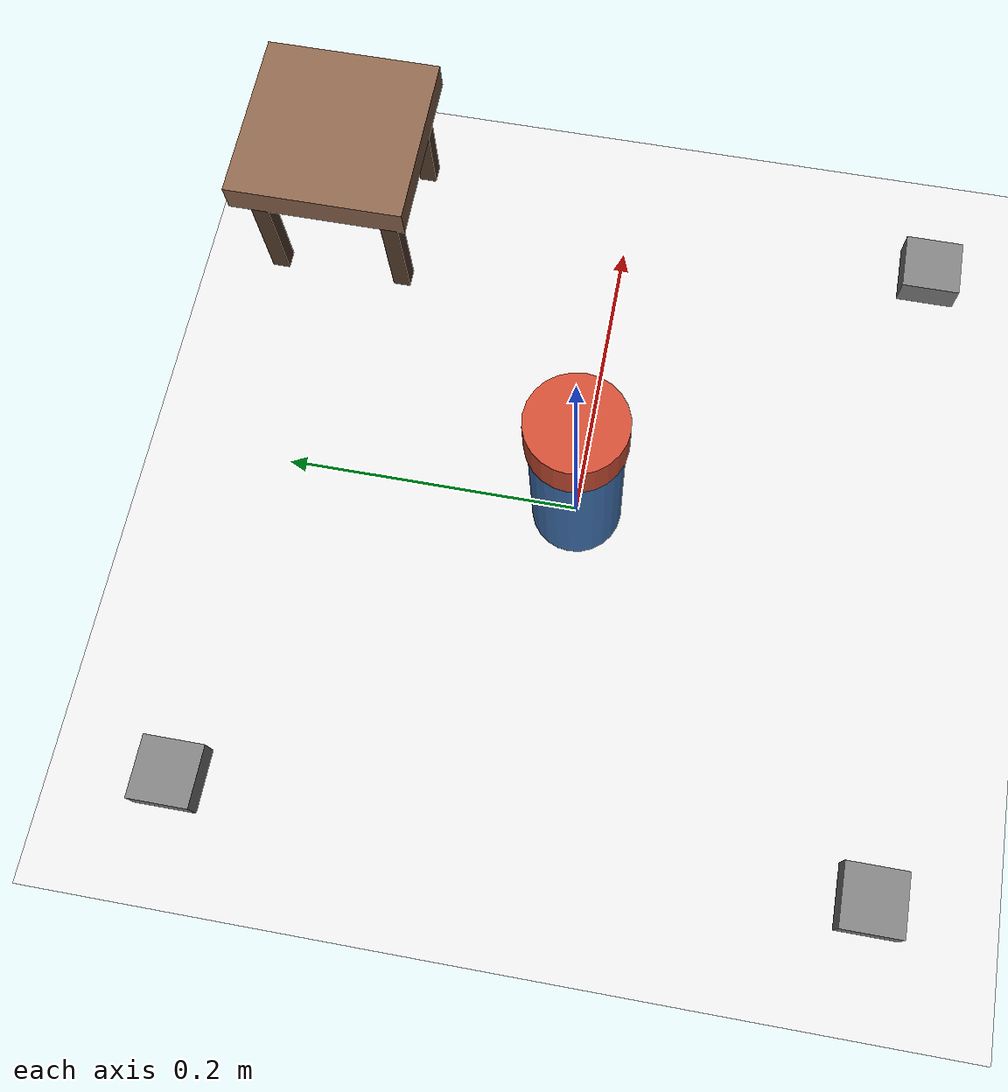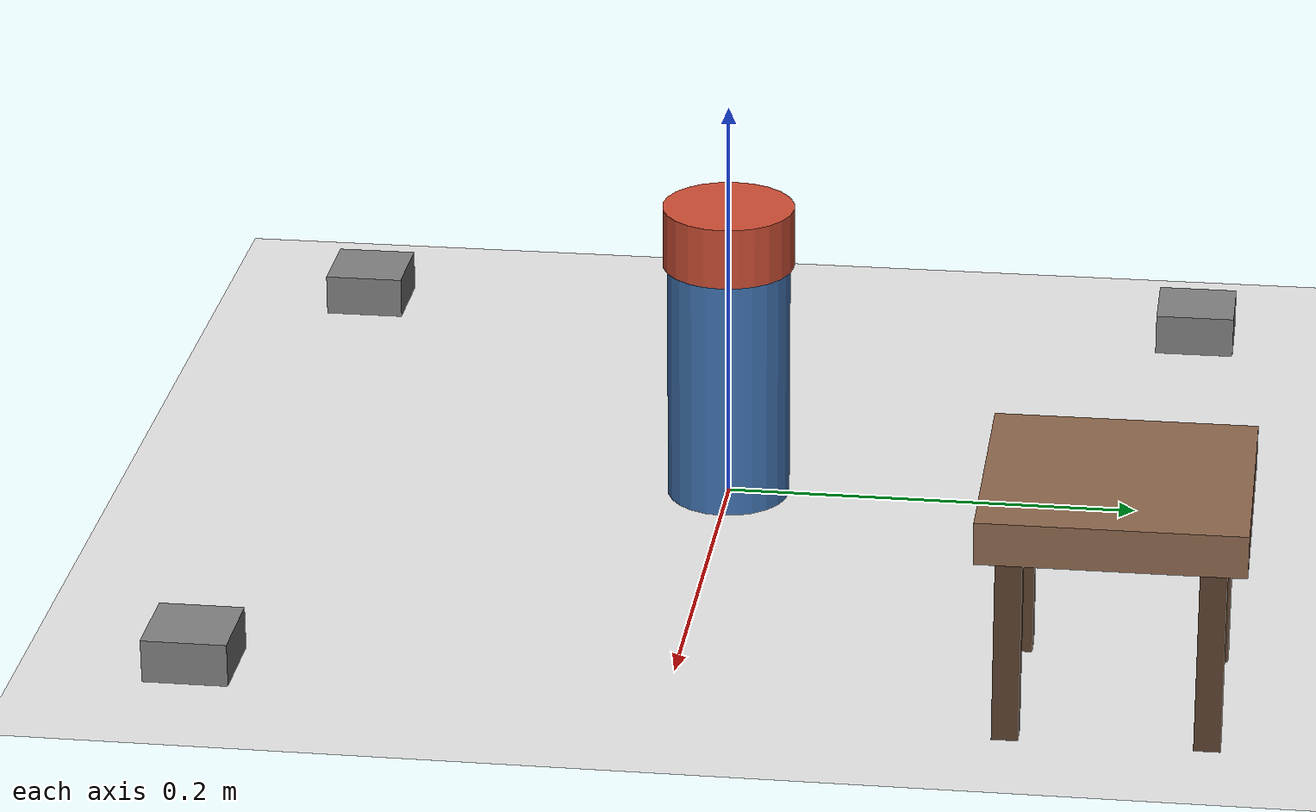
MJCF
<mujoco model="cap_twist">
  <compiler angle="radian"/>
  <option timestep="0.002" integrator="implicitfast" gravity="0 0 -9.81"/>

  <asset>
    <texture name="ground_tex_0" type="2d" builtin="checker" rgb1="0.5 0.5 0.52" rgb2="0.4 0.4 0.42" width="64" height="64"/>
    <material name="ground_mat_0" texture="ground_tex_0" texrepeat="4 4" reflectance="0.1"/>
    <texture name="ground_tex_1" type="2d" builtin="checker" rgb1="0.45 0.42 0.38" rgb2="0.3 0.28 0.25" width="64" height="64"/>
    <material name="ground_mat_1" texture="ground_tex_1" texrepeat="6 6" reflectance="0.05"/>
    <texture name="ground_tex_2" type="2d" builtin="gradient" rgb1="0.55 0.6 0.65" rgb2="0.25 0.28 0.32" width="64" height="64"/>
    <material name="ground_mat_2" texture="ground_tex_2" reflectance="0.0"/>

    <texture name="table_tex_0" type="2d" builtin="checker" rgb1="0.55 0.4 0.3" rgb2="0.45 0.32 0.24" width="64" height="64"/>
    <material name="table_mat_0" texture="table_tex_0" texrepeat="3 3" reflectance="0.1"/>
    <texture name="table_tex_1" type="2d" builtin="checker" rgb1="0.6 0.55 0.5" rgb2="0.4 0.36 0.3" width="64" height="64"/>
    <material name="table_mat_1" texture="table_tex_1" texrepeat="2 2" reflectance="0.15"/>
    <texture name="table_tex_2" type="2d" builtin="gradient" rgb1="0.5 0.35 0.25" rgb2="0.25 0.18 0.12" width="64" height="64"/>
    <material name="table_mat_2" texture="table_tex_2" reflectance="0.05"/>
  </asset>

  <worldbody>
    <light pos="0 0 1" dir="0 0 -1" diffuse="0.8 0.8 0.8"/>
    <light pos="0.3 -0.2 0.8" dir="-0.3 0.2 -0.6" diffuse="0.4 0.4 0.4"/>

    <geom name="floor_contact" type="plane" size="0.3 0.3 0.02" pos="0 0 0" contype="1" conaffinity="1"
          friction="1.0 0.005 0.0001" rgba="0.9 0.9 0.9 1"/>

    <!-- 순수 시각 장식(충돌 없음) -- peg_in_hole_bimanual_openarm.xml의
         ground/table과 완전히 같은 이름 규칙. floor_contact보다 살짜기
         아래(z=-0.001)에 둬서 겹치는 평면끼리 깜빡이는 걸(z-fighting)
         피했다. -->
    <geom name="ground" type="plane" pos="0 0 -0.001" size="0.5 0.5 0.01" contype="0" conaffinity="0" material="ground_mat_0" rgba="0.5 0.5 0.52 1"/>

    <!-- RoboTwin 2.0 이식 Part 1: clutter 슬롯(다른 두 태스크와 동일
         패턴/이름) -- cap_twist 작업공간이 작아서(floor 반경 0.3m)
         구석 좌표를 그만큼 줄였다. contype=0이라 bottle/cap 물리와는
         무관. -->
    <body name="clutter_0" pos="-0.22 -0.22 0">
      <geom name="clutter_0_geom" type="box" size="0.02 0.02 0.02" contype="0" conaffinity="0" rgba="0.5 0.5 0.5 1"/>
    </body>
    <body name="clutter_1" pos="-0.22 0.22 0">
      <geom name="clutter_1_geom" type="box" size="0.02 0.02 0.02" contype="0" conaffinity="0" rgba="0.5 0.5 0.5 1"/>
    </body>
    <body name="clutter_2" pos="0.22 -0.22 0">
      <geom name="clutter_2_geom" type="box" size="0.02 0.02 0.02" contype="0" conaffinity="0" rgba="0.5 0.5 0.5 1"/>
    </body>

    <!-- 순수 시각 장식 table(충돌 없음) -- bottle(원점)과 안 겹치게
         구석(0.2, 0.2)에 작게 뒀다. 다른 두 태스크의 "table" 패턴과
         이름을 맞췄다(table_top/table_leg_1..4) -- sim/
         visual_randomization.py가 공통으로 인식한다. -->
    <body name="table" pos="0.2 0.2 0">
      <geom name="table_top" type="box" pos="0 0 0.1" size="0.06 0.06 0.01" contype="0" conaffinity="0" material="table_mat_0" rgba="0.55 0.4 0.3 1"/>
      <geom name="table_leg_1" type="box" pos="0.045 0.045 0.05" size="0.006 0.006 0.05" contype="0" conaffinity="0" rgba="0.35 0.25 0.18 1"/>
      <geom name="table_leg_2" type="box" pos="-0.045 0.045 0.05" size="0.006 0.006 0.05" contype="0" conaffinity="0" rgba="0.35 0.25 0.18 1"/>
      <geom name="table_leg_3" type="box" pos="0.045 -0.045 0.05" size="0.006 0.006 0.05" contype="0" conaffinity="0" rgba="0.35 0.25 0.18 1"/>
      <geom name="table_leg_4" type="box" pos="-0.045 -0.045 0.05" size="0.006 0.006 0.05" contype="0" conaffinity="0" rgba="0.35 0.25 0.18 1"/>
    </body>

    <camera name="wide_cam" mode="targetbody" target="bottle" pos="0.5 0.3 0.4"/>
    <camera name="top_cam" mode="targetbody" target="bottle" pos="0.05 0.0 0.35"/>

    <!-- bottle: 3단계부터 freejoint(자유물체)다 -- 왼팔(Stabilizer)이 이
         물체를 쥐는 역할을 하려면 cap을 돌릴 때 생기는 반작용 토크에
         밀리거나 같이 돌 수 있어야 하기 때문(world-고정이면 Stabilizer가
         있으나 없으나 물리가 똑같아서 존재 의미가 없다). -->
    <body name="bottle" pos="0 0 0">
      <freejoint name="bottle_free"/>
      <inertial pos="0 0 0.06" mass="0.3" diaginertia="1.5e-4 1.5e-4 1.5e-4"/>
      <geom name="bottle_body" type="cylinder" size="0.03 0.06" pos="0 0 0.06"
            contype="1" conaffinity="1" friction="1.0 0.005 0.0001" rgba="0.25 0.45 0.7 1"/>

      <body name="cap" pos="0 0 0.12">
        <joint name="cap_hinge" type="hinge" axis="0 0 1" pos="0 0 0"
               damping="0.05" frictionloss="0.05" limited="false"/>
        <inertial pos="0 0 0" mass="0.3" diaginertia="1e-3 1e-3 1e-3"/>
        <geom name="cap_geom" type="cylinder" size="0.032 0.015" pos="0 0 0.015"
              contype="0" conaffinity="0" rgba="0.8 0.3 0.2 1"/>
        <site name="cap_grip_site" pos="0 0 0.015" size="0.005"/>
      </body>
    </body>

    <body name="stabilizer_ee" pos="0 0 0">
      <joint name="stab_x" type="slide" axis="1 0 0" damping="90"/>
      <joint name="stab_y" type="slide" axis="0 1 0" damping="90"/>
      <joint name="stab_z" type="slide" axis="0 0 1" damping="90"/>
      <inertial pos="0 0 0" mass="0.1" diaginertia="1e-5 1e-5 1e-5"/>
      <geom name="stabilizer_ee_geom" type="sphere" size="0.012" contype="0" conaffinity="0" rgba="0.2 0.8 0.3 1"/>
      <site name="stabilizer_ee_site" pos="0 0 0" size="0.005"/>
    </body>
  </worldbody>

  <equality>
    <weld name="stabilizer_weld" body1="stabilizer_ee" body2="bottle"
          solref="0.002 1" solimp="0.95 0.99 0.0001 0.5 2" active="false"/>
  </equality>

  <actuator>
    <!-- kp: 목표각 추종 강성. forcerange: 그립이 슬립 없이 낼 수 있는 최대 토크
         (sim/cap_twist_env.py의 TAU_STUCK_THRESHOLD보다 커야, 스턱 감지가
         이 한계에 도달하기 전에 먼저 트리거된다). -->
    <position name="cap_drive" joint="cap_hinge" kp="8.0" forcerange="-1.2 1.2"/>

    <position name="stab_x" joint="stab_x" kp="20000" forcerange="-3000 3000"/>
    <position name="stab_y" joint="stab_y" kp="20000" forcerange="-3000 3000"/>
    <position name="stab_z" joint="stab_z" kp="20000" forcerange="-3000 3000"/>
  </actuator>

  <sensor>
    <jointactuatorfrc name="cap_torque" joint="cap_hinge"/>
  </sensor>
</mujoco>
